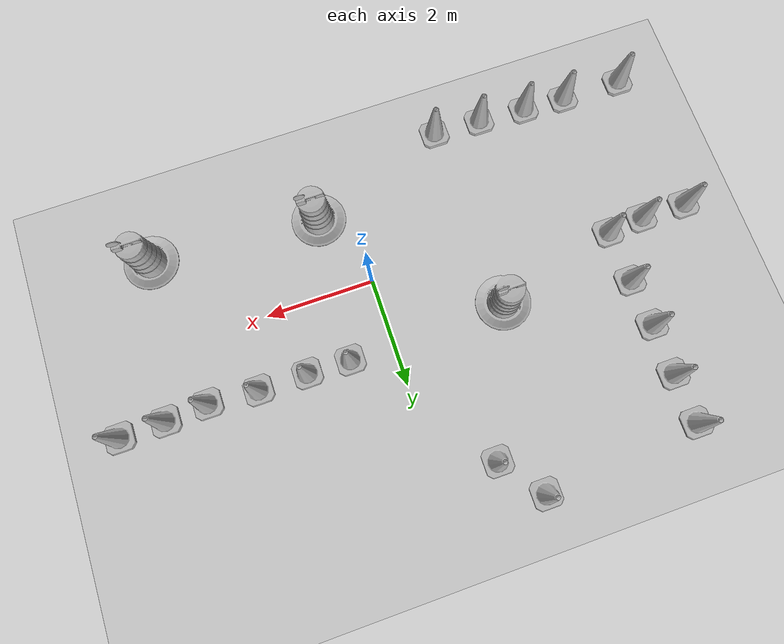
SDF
<sdf version="1.7">
 <world name="default">
  <light name="sun" type="directional">
   <pose>0 0 10 0 -0 0</pose>
   <diffuse>0.8 0.8 0.8 1</diffuse>
   <specular>0.2 0.2 0.2 1</specular>
   <attenuation>
    <range>1000</range>
    <constant>0.9</constant>
    <linear>0.01</linear>
    <quadratic>0.001</quadratic>
   </attenuation>
   <direction>-0.5 0.1 -0.9</direction>
   <spot><inner_angle>0</inner_angle><outer_angle>0</outer_angle><falloff>0</falloff></spot>
  </light>
  <model name="ground_plane">
   <static>1</static>
   <link name="link">
    <collision name="collision">
     <geometry><plane><normal>0 0 1</normal><size>100 100</size></plane></geometry>
     <surface>
      <contact><collide_bitmask>65535</collide_bitmask></contact>
      <friction><ode><mu>100</mu><mu2>50</mu2></ode></friction>
     </surface>
    </collision>
    <visual name="visual">
     <cast_shadows>0</cast_shadows>
     <geometry><plane><normal>0 0 1</normal><size>100 100</size></plane></geometry>
     <material>
      <script><uri>file://media/materials/scripts/gazebo.material</uri><name>Gazebo/Grey</name></script>
     </material>
    </visual>
   </link>
  </model>
  <gravity>0 0 -9.8</gravity>
  <magnetic_field>6e-06 2.3e-05 -4.2e-05</magnetic_field>
  <atmosphere type="adiabatic"/>
  <physics type="ode">
   <max_step_size>0.001</max_step_size>
   <real_time_factor>1</real_time_factor>
   <real_time_update_rate>1000</real_time_update_rate>
  </physics>
  <scene><ambient>0.4 0.4 0.4 1</ambient><background>0.7 0.7 0.7 1</background><shadows>1</shadows></scene>
  <audio><device>default</device></audio>
  <spherical_coordinates>
   <surface_model>EARTH_WGS84</surface_model>
   <latitude_deg>0</latitude_deg>
   <longitude_deg>0</longitude_deg>
   <elevation>0</elevation>
   <heading_deg>0</heading_deg>
  </spherical_coordinates>
  <model name="Construction Cone">
   <link name="link">
    <collision name="collision">
     <geometry>
      <mesh><scale>10 10 10</scale><uri>model://construction_cone/meshes/construction_cone.dae</uri></mesh>
     </geometry>
    </collision>
    <visual name="visual">
     <geometry>
      <mesh><scale>10 10 10</scale><uri>model://construction_cone/meshes/construction_cone.dae</uri></mesh>
     </geometry>
    </visual>
    <inertial>
     <inertia><ixx>1</ixx><ixy>0</ixy><ixz>0</ixz><iyy>1</iyy><iyz>0</iyz><izz>1</izz></inertia>
     <mass>1</mass>
    </inertial>
   </link>
   <pose>-4.5561 4.26415 -6e-06 2e-06 -0 0</pose>
  </model>
  <model name="Construction Cone_0">
   <link name="link">
    <collision name="collision">
     <geometry>
      <mesh><scale>10 10 10</scale><uri>model://construction_cone/meshes/construction_cone.dae</uri></mesh>
     </geometry>
    </collision>
    <visual name="visual">
     <geometry>
      <mesh><scale>10 10 10</scale><uri>model://construction_cone/meshes/construction_cone.dae</uri></mesh>
     </geometry>
    </visual>
    <inertial>
     <inertia><ixx>1</ixx><ixy>0</ixy><ixz>0</ixz><iyy>1</iyy><iyz>0</iyz><izz>1</izz></inertia>
     <mass>1</mass>
    </inertial>
   </link>
   <pose>-4.51902 3.35144 -0 0 -0 0</pose>
  </model>
  <model name="Construction Cone_1">
   <link name="link">
    <collision name="collision">
     <geometry>
      <mesh><scale>10 10 10</scale><uri>model://construction_cone/meshes/construction_cone.dae</uri></mesh>
     </geometry>
    </collision>
    <visual name="visual">
     <geometry>
      <mesh><scale>10 10 10</scale><uri>model://construction_cone/meshes/construction_cone.dae</uri></mesh>
     </geometry>
    </visual>
    <inertial>
     <inertia><ixx>1</ixx><ixy>0</ixy><ixz>0</ixz><iyy>1</iyy><iyz>0</iyz><izz>1</izz></inertia>
     <mass>1</mass>
    </inertial>
   </link>
   <pose>-4.51781 2.41834 -8e-06 1e-06 -0 0</pose>
  </model>
  <model name="Construction Cone_2">
   <link name="link">
    <collision name="collision">
     <geometry>
      <mesh><scale>10 10 10</scale><uri>model://construction_cone/meshes/construction_cone.dae</uri></mesh>
     </geometry>
    </collision>
    <visual name="visual">
     <geometry>
      <mesh><scale>10 10 10</scale><uri>model://construction_cone/meshes/construction_cone.dae</uri></mesh>
     </geometry>
    </visual>
    <inertial>
     <inertia><ixx>1</ixx><ixy>0</ixy><ixz>0</ixz><iyy>1</iyy><iyz>0</iyz><izz>1</izz></inertia>
     <mass>1</mass>
    </inertial>
   </link>
   <pose>-4.46868 1.53629 -5e-06 4e-06 -1e-06 0</pose>
  </model>
  <model name="Construction Cone_3">
   <link name="link">
    <collision name="collision">
     <geometry>
      <mesh><scale>10 10 10</scale><uri>model://construction_cone/meshes/construction_cone.dae</uri></mesh>
     </geometry>
    </collision>
    <visual name="visual">
     <geometry>
      <mesh><scale>10 10 10</scale><uri>model://construction_cone/meshes/construction_cone.dae</uri></mesh>
     </geometry>
    </visual>
    <inertial>
     <inertia><ixx>1</ixx><ixy>0</ixy><ixz>0</ixz><iyy>1</iyy><iyz>0</iyz><izz>1</izz></inertia>
     <mass>1</mass>
    </inertial>
   </link>
   <pose>-4.44217 0.55834 -0 0 -0 0</pose>
  </model>
  <model name="Construction Cone_4">
   <link name="link">
    <collision name="collision">
     <geometry>
      <mesh><scale>10 10 10</scale><uri>model://construction_cone/meshes/construction_cone.dae</uri></mesh>
     </geometry>
    </collision>
    <visual name="visual">
     <geometry>
      <mesh><scale>10 10 10</scale><uri>model://construction_cone/meshes/construction_cone.dae</uri></mesh>
     </geometry>
    </visual>
    <inertial>
     <inertia><ixx>1</ixx><ixy>0</ixy><ixz>0</ixz><iyy>1</iyy><iyz>0</iyz><izz>1</izz></inertia>
     <mass>1</mass>
    </inertial>
   </link>
   <pose>-5.13892 0.496623 -0 0 -0 0</pose>
  </model>
  <model name="Construction Cone_5">
   <link name="link">
    <collision name="collision">
     <geometry>
      <mesh><scale>10 10 10</scale><uri>model://construction_cone/meshes/construction_cone.dae</uri></mesh>
     </geometry>
    </collision>
    <visual name="visual">
     <geometry>
      <mesh><scale>10 10 10</scale><uri>model://construction_cone/meshes/construction_cone.dae</uri></mesh>
     </geometry>
    </visual>
    <inertial>
     <inertia><ixx>1</ixx><ixy>0</ixy><ixz>0</ixz><iyy>1</iyy><iyz>0</iyz><izz>1</izz></inertia>
     <mass>1</mass>
    </inertial>
   </link>
   <pose>-5.99691 0.506032 -0 0 -0 0</pose>
  </model>
  <model name="Construction Cone_6">
   <link name="link">
    <collision name="collision">
     <geometry>
      <mesh><scale>10 10 10</scale><uri>model://construction_cone/meshes/construction_cone.dae</uri></mesh>
     </geometry>
    </collision>
    <visual name="visual">
     <geometry>
      <mesh><scale>10 10 10</scale><uri>model://construction_cone/meshes/construction_cone.dae</uri></mesh>
     </geometry>
    </visual>
    <inertial>
     <inertia><ixx>1</ixx><ixy>0</ixy><ixz>0</ixz><iyy>1</iyy><iyz>0</iyz><izz>1</izz></inertia>
     <mass>1</mass>
    </inertial>
   </link>
   <pose>-1.63747 4.51299 -0 0 -0 0</pose>
  </model>
  <model name="Construction Cone_7">
   <link name="link">
    <collision name="collision">
     <geometry>
      <mesh><scale>10 10 10</scale><uri>model://construction_cone/meshes/construction_cone.dae</uri></mesh>
     </geometry>
    </collision>
    <visual name="visual">
     <geometry>
      <mesh><scale>10 10 10</scale><uri>model://construction_cone/meshes/construction_cone.dae</uri></mesh>
     </geometry>
    </visual>
    <inertial>
     <inertia><ixx>1</ixx><ixy>0</ixy><ixz>0</ixz><iyy>1</iyy><iyz>0</iyz><izz>1</izz></inertia>
     <mass>1</mass>
    </inertial>
   </link>
   <pose>-1.04363 3.73948 -0 0 -0 0</pose>
  </model>
  <model name="Construction Cone_8">
   <link name="link">
    <collision name="collision">
     <geometry>
      <mesh><scale>10 10 10</scale><uri>model://construction_cone/meshes/construction_cone.dae</uri></mesh>
     </geometry>
    </collision>
    <visual name="visual">
     <geometry>
      <mesh><scale>10 10 10</scale><uri>model://construction_cone/meshes/construction_cone.dae</uri></mesh>
     </geometry>
    </visual>
    <inertial>
     <inertia><ixx>1</ixx><ixy>0</ixy><ixz>0</ixz><iyy>1</iyy><iyz>0</iyz><izz>1</izz></inertia>
     <mass>1</mass>
    </inertial>
   </link>
   <pose>0.818108 1.24188 -0 0 -0 0</pose>
  </model>
  <model name="Construction Cone_9">
   <link name="link">
    <collision name="collision">
     <geometry>
      <mesh><scale>10 10 10</scale><uri>model://construction_cone/meshes/construction_cone.dae</uri></mesh>
     </geometry>
    </collision>
    <visual name="visual">
     <geometry>
      <mesh><scale>10 10 10</scale><uri>model://construction_cone/meshes/construction_cone.dae</uri></mesh>
     </geometry>
    </visual>
    <inertial>
     <inertia><ixx>1</ixx><ixy>0</ixy><ixz>0</ixz><iyy>1</iyy><iyz>0</iyz><izz>1</izz></inertia>
     <mass>1</mass>
    </inertial>
   </link>
   <pose>1.61089 1.21886 -0 0 -0 0</pose>
  </model>
  <model name="Construction Cone_10">
   <link name="link">
    <collision name="collision">
     <geometry>
      <mesh><scale>10 10 10</scale><uri>model://construction_cone/meshes/construction_cone.dae</uri></mesh>
     </geometry>
    </collision>
    <visual name="visual">
     <geometry>
      <mesh><scale>10 10 10</scale><uri>model://construction_cone/meshes/construction_cone.dae</uri></mesh>
     </geometry>
    </visual>
    <inertial>
     <inertia><ixx>1</ixx><ixy>0</ixy><ixz>0</ixz><iyy>1</iyy><iyz>0</iyz><izz>1</izz></inertia>
     <mass>1</mass>
    </inertial>
   </link>
   <pose>2.51397 1.21851 -0 0 -1e-06 0</pose>
  </model>
  <model name="Construction Cone_11">
   <link name="link">
    <collision name="collision">
     <geometry>
      <mesh><scale>10 10 10</scale><uri>model://construction_cone/meshes/construction_cone.dae</uri></mesh>
     </geometry>
    </collision>
    <visual name="visual">
     <geometry>
      <mesh><scale>10 10 10</scale><uri>model://construction_cone/meshes/construction_cone.dae</uri></mesh>
     </geometry>
    </visual>
    <inertial>
     <inertia><ixx>1</ixx><ixy>0</ixy><ixz>0</ixz><iyy>1</iyy><iyz>0</iyz><izz>1</izz></inertia>
     <mass>1</mass>
    </inertial>
   </link>
   <pose>3.42626 1.15304 -1e-06 4e-06 -0 0</pose>
  </model>
  <model name="Construction Cone_12">
   <link name="link">
    <collision name="collision">
     <geometry>
      <mesh><scale>10 10 10</scale><uri>model://construction_cone/meshes/construction_cone.dae</uri></mesh>
     </geometry>
    </collision>
    <visual name="visual">
     <geometry>
      <mesh><scale>10 10 10</scale><uri>model://construction_cone/meshes/construction_cone.dae</uri></mesh>
     </geometry>
    </visual>
    <inertial>
     <inertia><ixx>1</ixx><ixy>0</ixy><ixz>0</ixz><iyy>1</iyy><iyz>0</iyz><izz>1</izz></inertia>
     <mass>1</mass>
    </inertial>
   </link>
   <pose>4.20157 1.20078 -6e-06 2e-06 -0 0</pose>
  </model>
  <model name="Construction Cone_13">
   <link name="link">
    <collision name="collision">
     <geometry>
      <mesh><scale>10 10 10</scale><uri>model://construction_cone/meshes/construction_cone.dae</uri></mesh>
     </geometry>
    </collision>
    <visual name="visual">
     <geometry>
      <mesh><scale>10 10 10</scale><uri>model://construction_cone/meshes/construction_cone.dae</uri></mesh>
     </geometry>
    </visual>
    <inertial>
     <inertia><ixx>1</ixx><ixy>0</ixy><ixz>0</ixz><iyy>1</iyy><iyz>0</iyz><izz>1</izz></inertia>
     <mass>1</mass>
    </inertial>
   </link>
   <pose>5.02731 1.21865 -0 -0 -0 -0</pose>
  </model>
  <model name="Construction Cone_14">
   <link name="link">
    <collision name="collision">
     <geometry>
      <mesh><scale>10 10 10</scale><uri>model://construction_cone/meshes/construction_cone.dae</uri></mesh>
     </geometry>
    </collision>
    <visual name="visual">
     <geometry>
      <mesh><scale>10 10 10</scale><uri>model://construction_cone/meshes/construction_cone.dae</uri></mesh>
     </geometry>
    </visual>
    <inertial>
     <inertia><ixx>1</ixx><ixy>0</ixy><ixz>0</ixz><iyy>1</iyy><iyz>0</iyz><izz>1</izz></inertia>
     <mass>1</mass>
    </inertial>
   </link>
   <pose>-5.80859 -2.22988 -1e-06 2e-06 2e-06 0</pose>
  </model>
  <model name="Construction Cone_15">
   <link name="link">
    <collision name="collision">
     <geometry>
      <mesh><scale>10 10 10</scale><uri>model://construction_cone/meshes/construction_cone.dae</uri></mesh>
     </geometry>
    </collision>
    <visual name="visual">
     <geometry>
      <mesh><scale>10 10 10</scale><uri>model://construction_cone/meshes/construction_cone.dae</uri></mesh>
     </geometry>
    </visual>
    <inertial>
     <inertia><ixx>1</ixx><ixy>0</ixy><ixz>0</ixz><iyy>1</iyy><iyz>0</iyz><izz>1</izz></inertia>
     <mass>1</mass>
    </inertial>
   </link>
   <pose>-4.66346 -2.24636 -8e-06 7e-06 -0 0</pose>
  </model>
  <model name="Construction Cone_16">
   <link name="link">
    <collision name="collision">
     <geometry>
      <mesh><scale>10 10 10</scale><uri>model://construction_cone/meshes/construction_cone.dae</uri></mesh>
     </geometry>
    </collision>
    <visual name="visual">
     <geometry>
      <mesh><scale>10 10 10</scale><uri>model://construction_cone/meshes/construction_cone.dae</uri></mesh>
     </geometry>
    </visual>
    <inertial>
     <inertia><ixx>1</ixx><ixy>0</ixy><ixz>0</ixz><iyy>1</iyy><iyz>0</iyz><izz>1</izz></inertia>
     <mass>1</mass>
    </inertial>
   </link>
   <pose>-3.85584 -2.2813 -1e-05 0 -0 0</pose>
  </model>
  <model name="Construction Cone_17">
   <link name="link">
    <collision name="collision">
     <geometry>
      <mesh><scale>10 10 10</scale><uri>model://construction_cone/meshes/construction_cone.dae</uri></mesh>
     </geometry>
    </collision>
    <visual name="visual">
     <geometry>
      <mesh><scale>10 10 10</scale><uri>model://construction_cone/meshes/construction_cone.dae</uri></mesh>
     </geometry>
    </visual>
    <inertial>
     <inertia><ixx>1</ixx><ixy>0</ixy><ixz>0</ixz><iyy>1</iyy><iyz>0</iyz><izz>1</izz></inertia>
     <mass>1</mass>
    </inertial>
   </link>
   <pose>-2.95669 -2.33271 -0 0 -0 0</pose>
  </model>
  <model name="Construction Cone_18">
   <link name="link">
    <collision name="collision">
     <geometry>
      <mesh><scale>10 10 10</scale><uri>model://construction_cone/meshes/construction_cone.dae</uri></mesh>
     </geometry>
    </collision>
    <visual name="visual">
     <geometry>
      <mesh><scale>10 10 10</scale><uri>model://construction_cone/meshes/construction_cone.dae</uri></mesh>
     </geometry>
    </visual>
    <inertial>
     <inertia><ixx>1</ixx><ixy>0</ixy><ixz>0</ixz><iyy>1</iyy><iyz>0</iyz><izz>1</izz></inertia>
     <mass>1</mass>
    </inertial>
   </link>
   <pose>-2.05015 -2.36751 -0 0 -0 0</pose>
  </model>
  <model name="Construction Barrel">
   <link name="link">
    <inertial>
     <pose>0 0 0.4 0 -0 0</pose>
     <mass>500</mass>
     <inertia><ixx>51.2096</ixx><iyy>51.2096</iyy><izz>25</izz><ixy>0</ixy><ixz>0</ixz><iyz>0</iyz></inertia>
    </inertial>
    <collision name="collision">
     <geometry><mesh><uri>model://construction_barrel/meshes/construction_barrel.dae</uri></mesh></geometry>
    </collision>
    <visual name="visual">
     <geometry><mesh><uri>model://construction_barrel/meshes/construction_barrel.dae</uri></mesh></geometry>
    </visual>
   </link>
   <pose>0.570232 -1.44524 1e-06 2e-06 3e-06 -6e-06</pose>
  </model>
  <model name="Construction Barrel_0">
   <link name="link">
    <inertial>
     <pose>0 0 0.4 0 -0 0</pose>
     <mass>500</mass>
     <inertia><ixx>51.2096</ixx><iyy>51.2096</iyy><izz>25</izz><ixy>0</ixy><ixz>0</ixz><iyz>0</iyz></inertia>
    </inertial>
    <collision name="collision">
     <geometry><mesh><uri>model://construction_barrel/meshes/construction_barrel.dae</uri></mesh></geometry>
    </collision>
    <visual name="visual">
     <geometry><mesh><uri>model://construction_barrel/meshes/construction_barrel.dae</uri></mesh></geometry>
    </visual>
   </link>
   <pose>-2.12895 1.15582 0 0 0 -3e-06</pose>
  </model>
  <model name="Construction Barrel_1">
   <link name="link">
    <inertial>
     <pose>0 0 0.4 0 -0 0</pose>
     <mass>500</mass>
     <inertia><ixx>51.2096</ixx><iyy>51.2096</iyy><izz>25</izz><ixy>0</ixy><ixz>0</ixz><iyz>0</iyz></inertia>
    </inertial>
    <collision name="collision">
     <geometry><mesh><uri>model://construction_barrel/meshes/construction_barrel.dae</uri></mesh></geometry>
    </collision>
    <visual name="visual">
     <geometry><mesh><uri>model://construction_barrel/meshes/construction_barrel.dae</uri></mesh></geometry>
    </visual>
   </link>
   <pose>3.73458 -1.67192 -1e-06 3e-06 -2e-06 -2e-06</pose>
  </model>
 </world>
</sdf>
